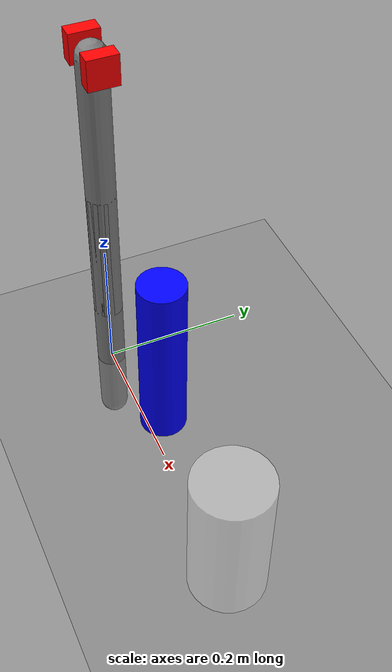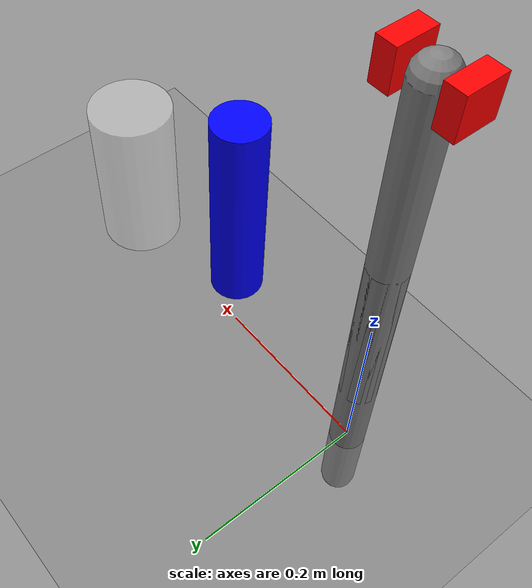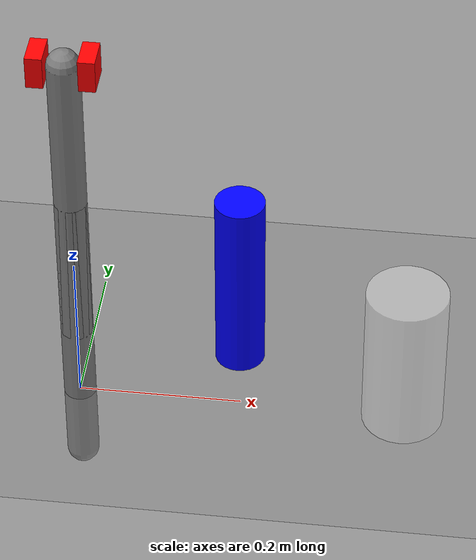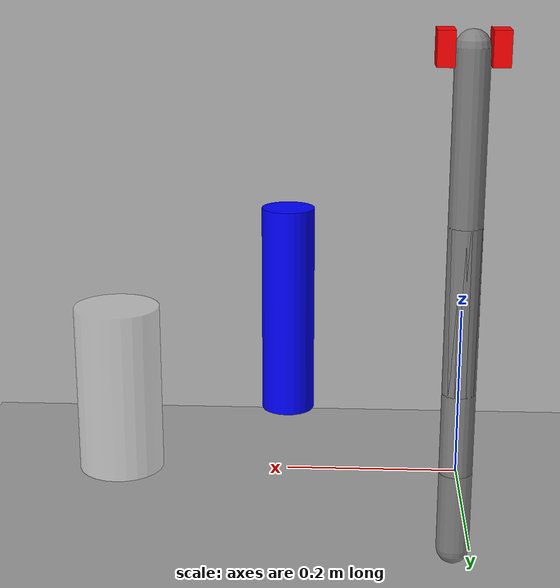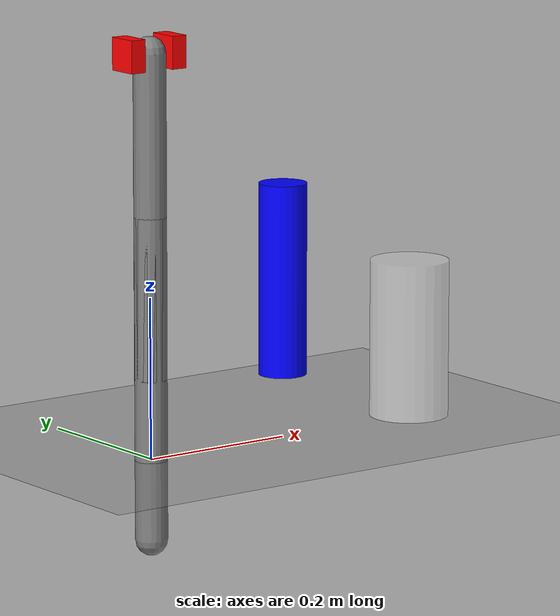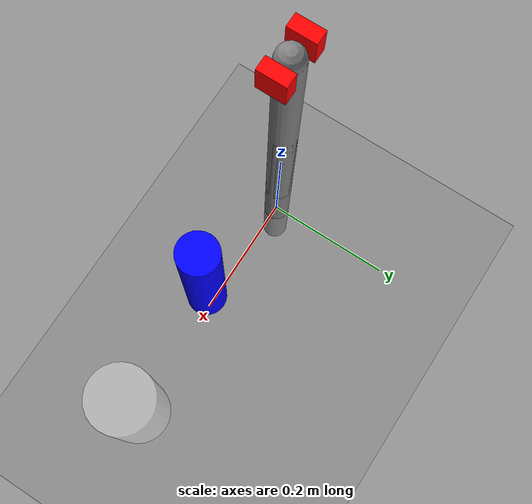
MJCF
<mujoco>
   <option gravity="0 0 -9.81"/>

    <worldbody>
        <geom type="plane" size="2 2 0.1"/>

        <!-- Base -->
        <body name="base" pos="0 0 0">
           <joint type="hinge" axis="0 0 1" damping="2"/>
            <inertial pos="0 0 0" mass="1" diaginertia="0.01 0.01 0.01"/>

            <!-- Link1 -->
            <body name="link1" pos="0 0 0.1">
                <joint type="hinge" axis="0 1 0"/>
                <inertial pos="0 0 0.1" mass="0.5" diaginertia="0.005 0.005 0.005"/>
                <geom type="capsule" size="0.02 0.2"/>

                <!-- Link2 -->
                <body name="link2" pos="0 0 0.2">
                    <joint type="hinge" axis="0 1 0"/>
                    <inertial pos="0 0 0.1" mass="0.5" diaginertia="0.005 0.005 0.005"/>
                    <geom type="capsule" size="0.02 0.2"/>

                    <!-- Gripper -->
                    <body name="gripper" pos="0 0 0.2">
                        <inertial pos="0 0 0" mass="0.2" diaginertia="0.002 0.002 0.002"/>

                        <!-- LEFT FINGER -->
                        <body name="left_finger" pos="0.03 0 0">
                            <joint name="left_slide" type="slide" axis="-1 0 0" range="0 0.04"/>
                            <geom type="box" size="0.01 0.02 0.02" rgba="1 0 0 1"/>
                        </body>

                        <!-- RIGHT FINGER -->
                        <body name="right_finger" pos="-0.03 0 0">
                            <joint name="right_slide" type="slide" axis="1 0 0" range="0 0.04"/>
                            <geom type="box" size="0.01 0.02 0.02" rgba="1 0 0 1"/>
                        </body>
                    </body>

                </body>
            </body>
        </body>

        <!-- Glass -->
        <body name="glass" pos="0.4 0 0.1">
    <!-- glass -->
    <geom type="cylinder" size="0.05 0.1" rgba="1 1 1 0.3"/>

    <!-- water inside glass -->
    <body name="water_body" pos="0 0 0">
        <geom name="water" type="cylinder" size="0.045 0.001" rgba="0 0 1 0.6"/>
    </body>
</body>

        <!-- Bottle -->
        <body name="bottle" pos="0.2 0 0.2">
    <joint name="bottle_free" type="free"/>
    <geom type="cylinder" size="0.03 0.12" rgba="0 0 1 1"/>
</body>
    </worldbody>

    <!-- 🔥 ACTUATOR (THIS WAS MISSING) -->
    <actuator>
        <position joint="left_slide" kp="50"/>
        <position joint="right_slide" kp="50"/>
    </actuator>

</mujoco>
